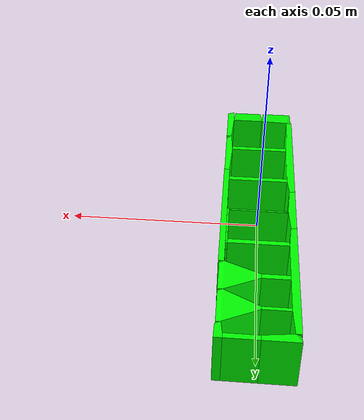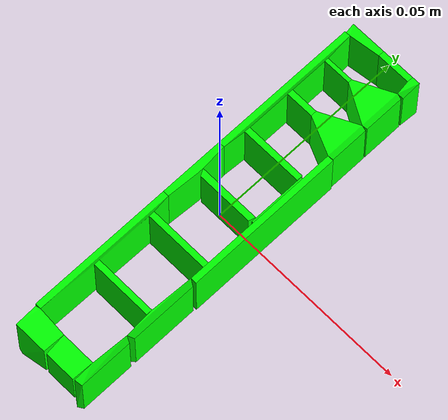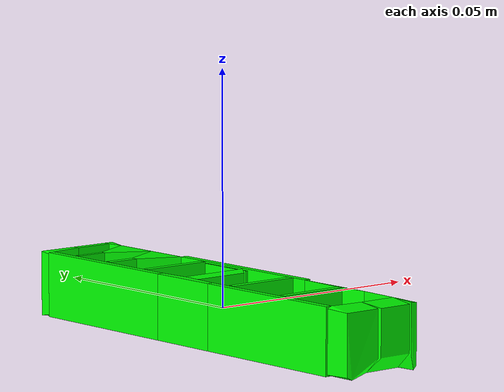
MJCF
<mujoco model="shapenet4-9">
  <asset>
    <mesh file="meshes/shapenet4-9/shapenet4-9_0.stl" name="shapenet4-9_0" scale="0.1 0.1 0.1"/>
    <mesh file="meshes/shapenet4-9/shapenet4-9_1.stl" name="shapenet4-9_1" scale="0.1 0.1 0.1"/>
    <mesh file="meshes/shapenet4-9/shapenet4-9_2.stl" name="shapenet4-9_2" scale="0.1 0.1 0.1"/>
    <mesh file="meshes/shapenet4-9/shapenet4-9_3.stl" name="shapenet4-9_3" scale="0.1 0.1 0.1"/>
    <mesh file="meshes/shapenet4-9/shapenet4-9_4.stl" name="shapenet4-9_4" scale="0.1 0.1 0.1"/>
    <mesh file="meshes/shapenet4-9/shapenet4-9_5.stl" name="shapenet4-9_5" scale="0.1 0.1 0.1"/>
    <mesh file="meshes/shapenet4-9/shapenet4-9_6.stl" name="shapenet4-9_6" scale="0.1 0.1 0.1"/>
    <mesh file="meshes/shapenet4-9/shapenet4-9_7.stl" name="shapenet4-9_7" scale="0.1 0.1 0.1"/>
    <mesh file="meshes/shapenet4-9/shapenet4-9_8.stl" name="shapenet4-9_8" scale="0.1 0.1 0.1"/>
    <mesh file="meshes/shapenet4-9/shapenet4-9_9.stl" name="shapenet4-9_9" scale="0.1 0.1 0.1"/>
    <mesh file="meshes/shapenet4-9/shapenet4-9_10.stl" name="shapenet4-9_10" scale="0.1 0.1 0.1"/>
    <mesh file="meshes/shapenet4-9/shapenet4-9_11.stl" name="shapenet4-9_11" scale="0.1 0.1 0.1"/>
    <mesh file="meshes/shapenet4-9/shapenet4-9_12.stl" name="shapenet4-9_12" scale="0.1 0.1 0.1"/>
    <mesh file="meshes/shapenet4-9/shapenet4-9_13.stl" name="shapenet4-9_13" scale="0.1 0.1 0.1"/>
    <mesh file="meshes/shapenet4-9/shapenet4-9_14.stl" name="shapenet4-9_14" scale="0.1 0.1 0.1"/>
    <mesh file="meshes/shapenet4-9/shapenet4-9_15.stl" name="shapenet4-9_15" scale="0.1 0.1 0.1"/>
    <mesh file="meshes/shapenet4-9/shapenet4-9_16.stl" name="shapenet4-9_16" scale="0.1 0.1 0.1"/>
    <mesh file="meshes/shapenet4-9/shapenet4-9_17.stl" name="shapenet4-9_17" scale="0.1 0.1 0.1"/>
    <mesh file="meshes/shapenet4-9/shapenet4-9_18.stl" name="shapenet4-9_18" scale="0.1 0.1 0.1"/>
    <mesh file="meshes/shapenet4-9/shapenet4-9_19.stl" name="shapenet4-9_19" scale="0.1 0.1 0.1"/>
  </asset>
  <worldbody>
    <body>
      <body name="collision">
        <geom pos="0 0 0" mesh="shapenet4-9_0" type="mesh" solimp="0.998 0.998 0.001" solref="0.001 1" density="100" friction="0.95 0.3 0.1" rgba="0 1 0 1" group="1" condim="4"/>
        <geom pos="0 0 0" mesh="shapenet4-9_1" type="mesh" solimp="0.998 0.998 0.001" solref="0.001 1" density="100" friction="0.95 0.3 0.1" rgba="0 1 0 1" group="1" condim="4"/>
        <geom pos="0 0 0" mesh="shapenet4-9_2" type="mesh" solimp="0.998 0.998 0.001" solref="0.001 1" density="100" friction="0.95 0.3 0.1" rgba="0 1 0 1" group="1" condim="4"/>
        <geom pos="0 0 0" mesh="shapenet4-9_3" type="mesh" solimp="0.998 0.998 0.001" solref="0.001 1" density="100" friction="0.95 0.3 0.1" rgba="0 1 0 1" group="1" condim="4"/>
        <geom pos="0 0 0" mesh="shapenet4-9_4" type="mesh" solimp="0.998 0.998 0.001" solref="0.001 1" density="100" friction="0.95 0.3 0.1" rgba="0 1 0 1" group="1" condim="4"/>
        <geom pos="0 0 0" mesh="shapenet4-9_5" type="mesh" solimp="0.998 0.998 0.001" solref="0.001 1" density="100" friction="0.95 0.3 0.1" rgba="0 1 0 1" group="1" condim="4"/>
        <geom pos="0 0 0" mesh="shapenet4-9_6" type="mesh" solimp="0.998 0.998 0.001" solref="0.001 1" density="100" friction="0.95 0.3 0.1" rgba="0 1 0 1" group="1" condim="4"/>
        <geom pos="0 0 0" mesh="shapenet4-9_7" type="mesh" solimp="0.998 0.998 0.001" solref="0.001 1" density="100" friction="0.95 0.3 0.1" rgba="0 1 0 1" group="1" condim="4"/>
        <geom pos="0 0 0" mesh="shapenet4-9_8" type="mesh" solimp="0.998 0.998 0.001" solref="0.001 1" density="100" friction="0.95 0.3 0.1" rgba="0 1 0 1" group="1" condim="4"/>
        <geom pos="0 0 0" mesh="shapenet4-9_9" type="mesh" solimp="0.998 0.998 0.001" solref="0.001 1" density="100" friction="0.95 0.3 0.1" rgba="0 1 0 1" group="1" condim="4"/>
        <geom pos="0 0 0" mesh="shapenet4-9_10" type="mesh" solimp="0.998 0.998 0.001" solref="0.001 1" density="100" friction="0.95 0.3 0.1" rgba="0 1 0 1" group="1" condim="4"/>
        <geom pos="0 0 0" mesh="shapenet4-9_11" type="mesh" solimp="0.998 0.998 0.001" solref="0.001 1" density="100" friction="0.95 0.3 0.1" rgba="0 1 0 1" group="1" condim="4"/>
        <geom pos="0 0 0" mesh="shapenet4-9_12" type="mesh" solimp="0.998 0.998 0.001" solref="0.001 1" density="100" friction="0.95 0.3 0.1" rgba="0 1 0 1" group="1" condim="4"/>
        <geom pos="0 0 0" mesh="shapenet4-9_13" type="mesh" solimp="0.998 0.998 0.001" solref="0.001 1" density="100" friction="0.95 0.3 0.1" rgba="0 1 0 1" group="1" condim="4"/>
        <geom pos="0 0 0" mesh="shapenet4-9_14" type="mesh" solimp="0.998 0.998 0.001" solref="0.001 1" density="100" friction="0.95 0.3 0.1" rgba="0 1 0 1" group="1" condim="4"/>
        <geom pos="0 0 0" mesh="shapenet4-9_15" type="mesh" solimp="0.998 0.998 0.001" solref="0.001 1" density="100" friction="0.95 0.3 0.1" rgba="0 1 0 1" group="1" condim="4"/>
        <geom pos="0 0 0" mesh="shapenet4-9_16" type="mesh" solimp="0.998 0.998 0.001" solref="0.001 1" density="100" friction="0.95 0.3 0.1" rgba="0 1 0 1" group="1" condim="4"/>
        <geom pos="0 0 0" mesh="shapenet4-9_17" type="mesh" solimp="0.998 0.998 0.001" solref="0.001 1" density="100" friction="0.95 0.3 0.1" rgba="0 1 0 1" group="1" condim="4"/>
        <geom pos="0 0 0" mesh="shapenet4-9_18" type="mesh" solimp="0.998 0.998 0.001" solref="0.001 1" density="100" friction="0.95 0.3 0.1" rgba="0 1 0 1" group="1" condim="4"/>
        <geom pos="0 0 0" mesh="shapenet4-9_19" type="mesh" solimp="0.998 0.998 0.001" solref="0.001 1" density="100" friction="0.95 0.3 0.1" rgba="0 1 0 1" group="1" condim="4"/>
      </body>
      <body name="visual">
        <geom pos="0 0 0" mesh="shapenet4-9_0" type="mesh" rgba="0 1 0 1" conaffinity="0" contype="0" group="0" mass="0.0001"/>
        <geom pos="0 0 0" mesh="shapenet4-9_1" type="mesh" rgba="0 1 0 1" conaffinity="0" contype="0" group="0" mass="0.0001"/>
        <geom pos="0 0 0" mesh="shapenet4-9_2" type="mesh" rgba="0 1 0 1" conaffinity="0" contype="0" group="0" mass="0.0001"/>
        <geom pos="0 0 0" mesh="shapenet4-9_3" type="mesh" rgba="0 1 0 1" conaffinity="0" contype="0" group="0" mass="0.0001"/>
        <geom pos="0 0 0" mesh="shapenet4-9_4" type="mesh" rgba="0 1 0 1" conaffinity="0" contype="0" group="0" mass="0.0001"/>
        <geom pos="0 0 0" mesh="shapenet4-9_5" type="mesh" rgba="0 1 0 1" conaffinity="0" contype="0" group="0" mass="0.0001"/>
        <geom pos="0 0 0" mesh="shapenet4-9_6" type="mesh" rgba="0 1 0 1" conaffinity="0" contype="0" group="0" mass="0.0001"/>
        <geom pos="0 0 0" mesh="shapenet4-9_7" type="mesh" rgba="0 1 0 1" conaffinity="0" contype="0" group="0" mass="0.0001"/>
        <geom pos="0 0 0" mesh="shapenet4-9_8" type="mesh" rgba="0 1 0 1" conaffinity="0" contype="0" group="0" mass="0.0001"/>
        <geom pos="0 0 0" mesh="shapenet4-9_9" type="mesh" rgba="0 1 0 1" conaffinity="0" contype="0" group="0" mass="0.0001"/>
        <geom pos="0 0 0" mesh="shapenet4-9_10" type="mesh" rgba="0 1 0 1" conaffinity="0" contype="0" group="0" mass="0.0001"/>
        <geom pos="0 0 0" mesh="shapenet4-9_11" type="mesh" rgba="0 1 0 1" conaffinity="0" contype="0" group="0" mass="0.0001"/>
        <geom pos="0 0 0" mesh="shapenet4-9_12" type="mesh" rgba="0 1 0 1" conaffinity="0" contype="0" group="0" mass="0.0001"/>
        <geom pos="0 0 0" mesh="shapenet4-9_13" type="mesh" rgba="0 1 0 1" conaffinity="0" contype="0" group="0" mass="0.0001"/>
        <geom pos="0 0 0" mesh="shapenet4-9_14" type="mesh" rgba="0 1 0 1" conaffinity="0" contype="0" group="0" mass="0.0001"/>
        <geom pos="0 0 0" mesh="shapenet4-9_15" type="mesh" rgba="0 1 0 1" conaffinity="0" contype="0" group="0" mass="0.0001"/>
        <geom pos="0 0 0" mesh="shapenet4-9_16" type="mesh" rgba="0 1 0 1" conaffinity="0" contype="0" group="0" mass="0.0001"/>
        <geom pos="0 0 0" mesh="shapenet4-9_17" type="mesh" rgba="0 1 0 1" conaffinity="0" contype="0" group="0" mass="0.0001"/>
        <geom pos="0 0 0" mesh="shapenet4-9_18" type="mesh" rgba="0 1 0 1" conaffinity="0" contype="0" group="0" mass="0.0001"/>
        <geom pos="0 0 0" mesh="shapenet4-9_19" type="mesh" rgba="0 1 0 1" conaffinity="0" contype="0" group="0" mass="0.0001"/>
      </body>
      <site rgba="0 0 0 0" size="0.005" pos="0 0 -0.06" name="bottom_site"/>
      <site rgba="0 0 0 0" size="0.005" pos="0 0 0.04" name="top_site"/>
      <site rgba="0 0 0 0" size="0.005" pos="0.025 0.025 0" name="horizontal_radius_site"/>
    </body>
  </worldbody>
</mujoco>
